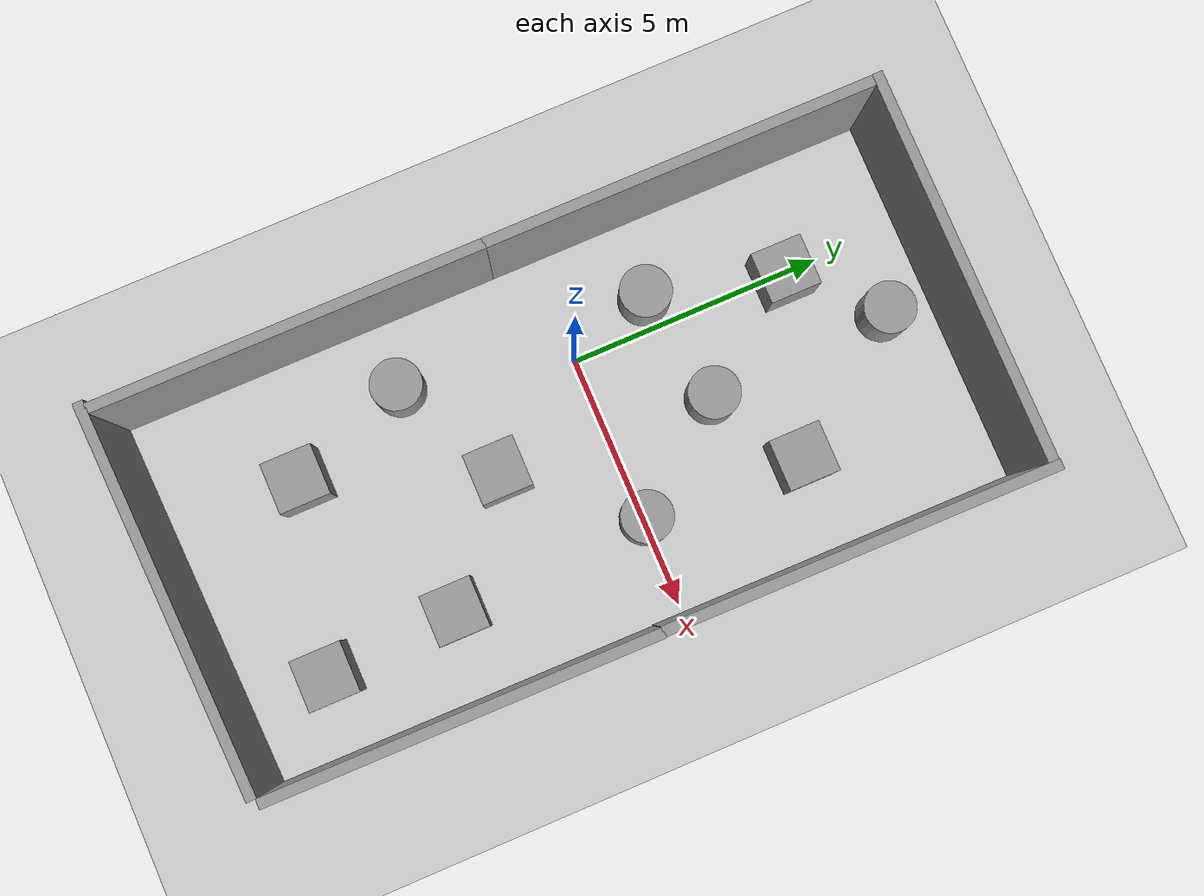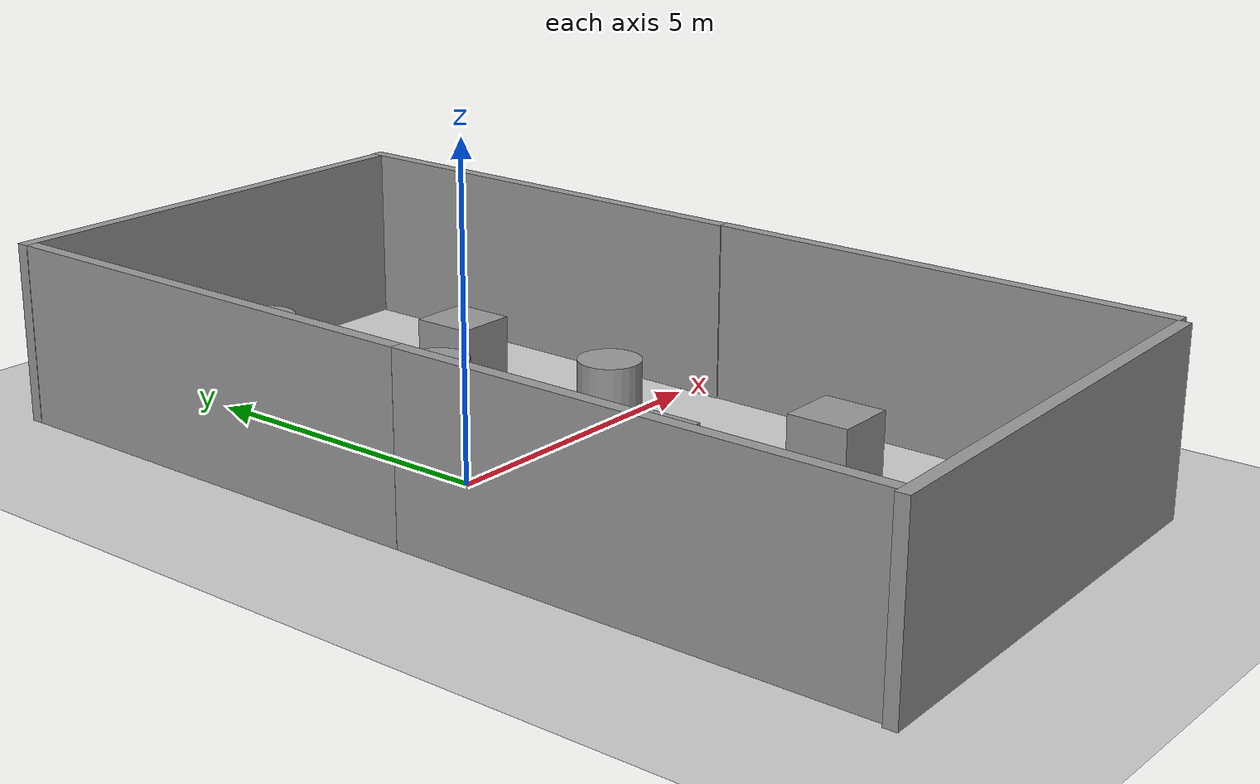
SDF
<sdf version="1.6">
 <world name="default">
  <light name="sun" type="directional">
   <pose>0 0 10 0 -0 0</pose>
   <diffuse>0.8 0.8 0.8 1</diffuse>
   <specular>0.2 0.2 0.2 1</specular>
   <attenuation>
    <range>1000</range>
    <constant>0.9</constant>
    <linear>0.01</linear>
    <quadratic>0.001</quadratic>
   </attenuation>
   <direction>-0.5 0.1 -0.9</direction>
  </light>
  <model name="ground_plane">
   <static>1</static>
   <link name="link">
    <collision name="collision">
     <geometry><plane><normal>0 0 1</normal><size>100 100</size></plane></geometry>
     <surface><friction><ode><mu>100</mu><mu2>50</mu2></ode></friction></surface>
    </collision>
    <visual name="visual">
     <cast_shadows>0</cast_shadows>
     <geometry><plane><normal>0 0 1</normal><size>100 100</size></plane></geometry>
     <material>
      <script><uri>file://media/materials/scripts/gazebo.material</uri><name>Gazebo/Grey</name></script>
     </material>
    </visual>
   </link>
  </model>
  <gravity>0 0 -9.8</gravity>
  <magnetic_field>6e-06 2.3e-05 -4.2e-05</magnetic_field>
  <atmosphere type="adiabatic"/>
  <physics name="default_physics" default="0" type="ode">
   <max_step_size>0.001</max_step_size>
   <real_time_factor>1</real_time_factor>
   <real_time_update_rate>1000</real_time_update_rate>
  </physics>
  <scene><ambient>0.4 0.4 0.4 1</ambient><background>0.7 0.7 0.7 1</background><shadows>1</shadows></scene>
  <spherical_coordinates>
   <surface_model>EARTH_WGS84</surface_model>
   <latitude_deg>0</latitude_deg>
   <longitude_deg>0</longitude_deg>
   <elevation>0</elevation>
   <heading_deg>0</heading_deg>
  </spherical_coordinates>
  <model name="grey_wall">
   <static>1</static>
   <link name="link">
    <pose>0 0 1.4 0 -0 0</pose>
    <collision name="collision"><geometry><box><size>7.5 0.2 2.8</size></box></geometry></collision>
    <visual name="visual">
     <cast_shadows>0</cast_shadows>
     <geometry><box><size>7.5 0.2 2.8</size></box></geometry>
     <material>
      <script>
       <uri>model://grey_wall/materials/scripts</uri>
       <uri>model://grey_wall/materials/textures</uri>
       <name>vrc/grey_wall</name>
      </script>
     </material>
    </visual>
   </link>
   <pose>1.47557 6.7752 0 0 -0 0</pose>
  </model>
  <model name="grey_wall_0">
   <static>1</static>
   <link name="link">
    <pose>0 0 1.4 0 -0 0</pose>
    <collision name="collision"><geometry><box><size>7.5 0.2 2.8</size></box></geometry></collision>
    <visual name="visual">
     <cast_shadows>0</cast_shadows>
     <geometry><box><size>7.5 0.2 2.8</size></box></geometry>
     <material>
      <script>
       <uri>model://grey_wall/materials/scripts</uri>
       <uri>model://grey_wall/materials/textures</uri>
       <name>vrc/grey_wall</name>
      </script>
     </material>
    </visual>
   </link>
   <pose>5.2884 3.14112 0 0 0 -1.57814</pose>
  </model>
  <model name="grey_wall_1">
   <static>1</static>
   <link name="link">
    <pose>0 0 1.4 0 -0 0</pose>
    <collision name="collision"><geometry><box><size>7.5 0.2 2.8</size></box></geometry></collision>
    <visual name="visual">
     <cast_shadows>0</cast_shadows>
     <geometry><box><size>7.5 0.2 2.8</size></box></geometry>
     <material>
      <script>
       <uri>model://grey_wall/materials/scripts</uri>
       <uri>model://grey_wall/materials/textures</uri>
       <name>vrc/grey_wall</name>
      </script>
     </material>
    </visual>
   </link>
   <pose>1.39139 -8.26343 0 0 -0 0.030718</pose>
  </model>
  <model name="grey_wall_2">
   <static>1</static>
   <link name="link">
    <pose>0 0 1.4 0 -0 0</pose>
    <collision name="collision"><geometry><box><size>7.5 0.2 2.8</size></box></geometry></collision>
    <visual name="visual">
     <cast_shadows>0</cast_shadows>
     <geometry><box><size>7.5 0.2 2.8</size></box></geometry>
     <material>
      <script>
       <uri>model://grey_wall/materials/scripts</uri>
       <uri>model://grey_wall/materials/textures</uri>
       <name>vrc/grey_wall</name>
      </script>
     </material>
    </visual>
   </link>
   <pose>5.25756 -4.33045 0 0 0 -1.57698</pose>
  </model>
  <model name="grey_wall_3">
   <static>1</static>
   <link name="link">
    <pose>0 0 1.4 0 -0 0</pose>
    <collision name="collision"><geometry><box><size>7.5 0.2 2.8</size></box></geometry></collision>
    <visual name="visual">
     <cast_shadows>0</cast_shadows>
     <geometry><box><size>7.5 0.2 2.8</size></box></geometry>
     <material>
      <script>
       <uri>model://grey_wall/materials/scripts</uri>
       <uri>model://grey_wall/materials/textures</uri>
       <name>vrc/grey_wall</name>
      </script>
     </material>
    </visual>
   </link>
   <pose>-2.17092 2.93039 0 0 0 -1.5715</pose>
  </model>
  <model name="grey_wall_4">
   <static>1</static>
   <link name="link">
    <pose>0 0 1.4 0 -0 0</pose>
    <collision name="collision"><geometry><box><size>7.5 0.2 2.8</size></box></geometry></collision>
    <visual name="visual">
     <cast_shadows>0</cast_shadows>
     <geometry><box><size>7.5 0.2 2.8</size></box></geometry>
     <material>
      <script>
       <uri>model://grey_wall/materials/scripts</uri>
       <uri>model://grey_wall/materials/textures</uri>
       <name>vrc/grey_wall</name>
      </script>
     </material>
    </visual>
   </link>
   <pose>-2.17914 -4.54594 0 0 0 -1.57265</pose>
  </model>
  <model name="unit_box">
   <static>1</static>
   <pose>0.119459 -5.6224 0.499995 0 1e-05 0</pose>
   <link name="link">
    <inertial>
     <mass>1</mass>
     <inertia>
      <ixx>0.166667</ixx>
      <ixy>0</ixy>
      <ixz>0</ixz>
      <iyy>0.166667</iyy>
      <iyz>0</iyz>
      <izz>0.166667</izz>
     </inertia>
    </inertial>
    <collision name="collision"><geometry><box><size>1 1 1</size></box></geometry></collision>
    <visual name="visual">
     <geometry><box><size>1 1 1</size></box></geometry>
     <material>
      <script><name>Gazebo/Grey</name><uri>file://media/materials/scripts/gazebo.material</uri></script>
     </material>
    </visual>
   </link>
  </model>
  <model name="unit_box_0">
   <static>1</static>
   <pose>0.067484 4.2412 0.499995 -1e-05 -0 -0</pose>
   <link name="link">
    <inertial>
     <mass>1</mass>
     <inertia>
      <ixx>0.166667</ixx>
      <ixy>0</ixy>
      <ixz>0</ixz>
      <iyy>0.166667</iyy>
      <iyz>0</iyz>
      <izz>0.166667</izz>
     </inertia>
    </inertial>
    <collision name="collision"><geometry><box><size>1 1 1</size></box></geometry></collision>
    <visual name="visual">
     <geometry><box><size>1 1 1</size></box></geometry>
     <material>
      <script><name>Gazebo/Grey</name><uri>file://media/materials/scripts/gazebo.material</uri></script>
     </material>
    </visual>
   </link>
  </model>
  <model name="unit_box_1">
   <static>1</static>
   <pose>3.66169 -6.48743 0.499995 0 1e-05 0</pose>
   <link name="link">
    <inertial>
     <mass>1</mass>
     <inertia>
      <ixx>0.166667</ixx>
      <ixy>0</ixy>
      <ixz>0</ixz>
      <iyy>0.166667</iyy>
      <iyz>0</iyz>
      <izz>0.166667</izz>
     </inertia>
    </inertial>
    <collision name="collision"><geometry><box><size>1 1 1</size></box></geometry></collision>
    <visual name="visual">
     <geometry><box><size>1 1 1</size></box></geometry>
     <material>
      <script><name>Gazebo/Grey</name><uri>file://media/materials/scripts/gazebo.material</uri></script>
     </material>
    </visual>
   </link>
  </model>
  <model name="unit_box_2">
   <static>1</static>
   <pose>3.39305 3.14847 0.499995 -1e-05 -0 -0</pose>
   <link name="link">
    <inertial>
     <mass>1</mass>
     <inertia>
      <ixx>0.166667</ixx>
      <ixy>0</ixy>
      <ixz>0</ixz>
      <iyy>0.166667</iyy>
      <iyz>0</iyz>
      <izz>0.166667</izz>
     </inertia>
    </inertial>
    <collision name="collision"><geometry><box><size>1 1 1</size></box></geometry></collision>
    <visual name="visual">
     <geometry><box><size>1 1 1</size></box></geometry>
     <material>
      <script><name>Gazebo/Grey</name><uri>file://media/materials/scripts/gazebo.material</uri></script>
     </material>
    </visual>
   </link>
  </model>
  <model name="unit_box_3">
   <static>1</static>
   <pose>1.42494 -2.14262 0.499995 0 1e-05 0</pose>
   <link name="link">
    <inertial>
     <mass>1</mass>
     <inertia>
      <ixx>0.166667</ixx>
      <ixy>0</ixy>
      <ixz>0</ixz>
      <iyy>0.166667</iyy>
      <iyz>0</iyz>
      <izz>0.166667</izz>
     </inertia>
    </inertial>
    <collision name="collision"><geometry><box><size>1 1 1</size></box></geometry></collision>
    <visual name="visual">
     <geometry><box><size>1 1 1</size></box></geometry>
     <material>
      <script><name>Gazebo/Grey</name><uri>file://media/materials/scripts/gazebo.material</uri></script>
     </material>
    </visual>
   </link>
  </model>
  <model name="unit_box_4">
   <static>1</static>
   <pose>3.49638 -3.86504 0.499995 -1e-05 -0 -0</pose>
   <link name="link">
    <inertial>
     <mass>1</mass>
     <inertia>
      <ixx>0.166667</ixx>
      <ixy>0</ixy>
      <ixz>0</ixz>
      <iyy>0.166667</iyy>
      <iyz>0</iyz>
      <izz>0.166667</izz>
     </inertia>
    </inertial>
    <collision name="collision"><geometry><box><size>1 1 1</size></box></geometry></collision>
    <visual name="visual">
     <geometry><box><size>1 1 1</size></box></geometry>
     <material>
      <script><name>Gazebo/Grey</name><uri>file://media/materials/scripts/gazebo.material</uri></script>
     </material>
    </visual>
   </link>
  </model>
  <model name="unit_cylinder">
   <static>1</static>
   <pose>-0.568207 1.68117 0.499992 -3e-06 -4e-06 -0</pose>
   <link name="link">
    <inertial>
     <mass>1</mass>
     <inertia><ixx>0.145833</ixx><ixy>0</ixy><ixz>0</ixz><iyy>0.145833</iyy><iyz>0</iyz><izz>0.125</izz></inertia>
    </inertial>
    <collision name="collision">
     <geometry><cylinder><radius>0.5</radius><length>1</length></cylinder></geometry>
    </collision>
    <visual name="visual">
     <geometry><cylinder><radius>0.5</radius><length>1</length></cylinder></geometry>
     <material>
      <script><name>Gazebo/Grey</name><uri>file://media/materials/scripts/gazebo.material</uri></script>
     </material>
    </visual>
   </link>
  </model>
  <model name="unit_cylinder_0">
   <static>1</static>
   <pose>-0.76782 -3.25314 0.499993 -3e-06 -3e-06 0</pose>
   <link name="link">
    <inertial>
     <mass>1</mass>
     <inertia><ixx>0.145833</ixx><ixy>0</ixy><ixz>0</ixz><iyy>0.145833</iyy><iyz>0</iyz><izz>0.125</izz></inertia>
    </inertial>
    <collision name="collision">
     <geometry><cylinder><radius>0.5</radius><length>1</length></cylinder></geometry>
    </collision>
    <visual name="visual">
     <geometry><cylinder><radius>0.5</radius><length>1</length></cylinder></geometry>
     <material>
      <script><name>Gazebo/Grey</name><uri>file://media/materials/scripts/gazebo.material</uri></script>
     </material>
    </visual>
   </link>
  </model>
  <model name="unit_cylinder_1">
   <static>1</static>
   <pose>3.28794 0.051112 0.499997 3e-06 4e-06 -0</pose>
   <link name="link">
    <inertial>
     <mass>1</mass>
     <inertia><ixx>0.145833</ixx><ixy>0</ixy><ixz>0</ixz><iyy>0.145833</iyy><iyz>0</iyz><izz>0.125</izz></inertia>
    </inertial>
    <collision name="collision">
     <geometry><cylinder><radius>0.5</radius><length>1</length></cylinder></geometry>
    </collision>
    <visual name="visual">
     <geometry><cylinder><radius>0.5</radius><length>1</length></cylinder></geometry>
     <material>
      <script><name>Gazebo/Grey</name><uri>file://media/materials/scripts/gazebo.material</uri></script>
     </material>
    </visual>
   </link>
  </model>
  <model name="unit_cylinder_2">
   <static>1</static>
   <pose>1.48581 5.72846 0.499993 -3e-06 -4e-06 -0</pose>
   <link name="link">
    <inertial>
     <mass>1</mass>
     <inertia><ixx>0.145833</ixx><ixy>0</ixy><ixz>0</ixz><iyy>0.145833</iyy><iyz>0</iyz><izz>0.125</izz></inertia>
    </inertial>
    <collision name="collision">
     <geometry><cylinder><radius>0.5</radius><length>1</length></cylinder></geometry>
    </collision>
    <visual name="visual">
     <geometry><cylinder><radius>0.5</radius><length>1</length></cylinder></geometry>
     <material>
      <script><name>Gazebo/Grey</name><uri>file://media/materials/scripts/gazebo.material</uri></script>
     </material>
    </visual>
   </link>
  </model>
  <model name="unit_cylinder_3">
   <static>1</static>
   <pose>1.6691 2.09683 0.499997 3e-06 4e-06 -0</pose>
   <link name="link">
    <inertial>
     <mass>1</mass>
     <inertia><ixx>0.145833</ixx><ixy>0</ixy><ixz>0</ixz><iyy>0.145833</iyy><iyz>0</iyz><izz>0.125</izz></inertia>
    </inertial>
    <collision name="collision">
     <geometry><cylinder><radius>0.5</radius><length>1</length></cylinder></geometry>
    </collision>
    <visual name="visual">
     <geometry><cylinder><radius>0.5</radius><length>1</length></cylinder></geometry>
     <material>
      <script><name>Gazebo/Grey</name><uri>file://media/materials/scripts/gazebo.material</uri></script>
     </material>
    </visual>
   </link>
  </model>
 </world>
</sdf>
